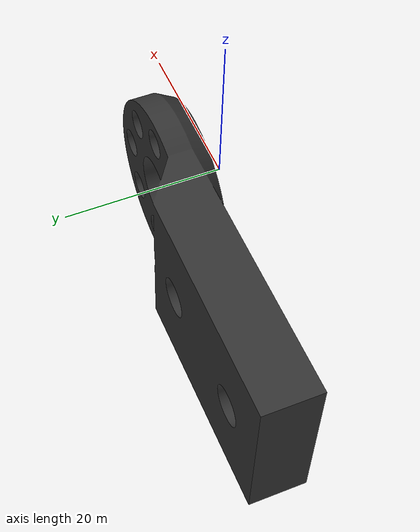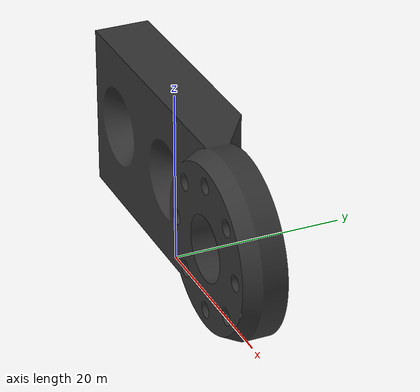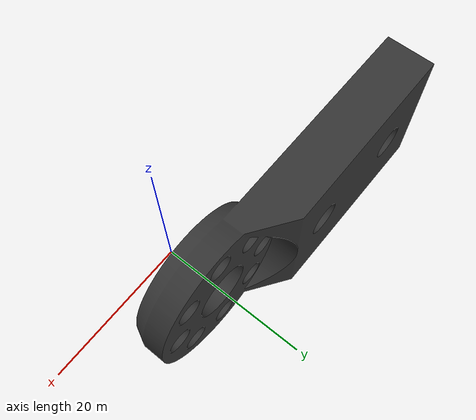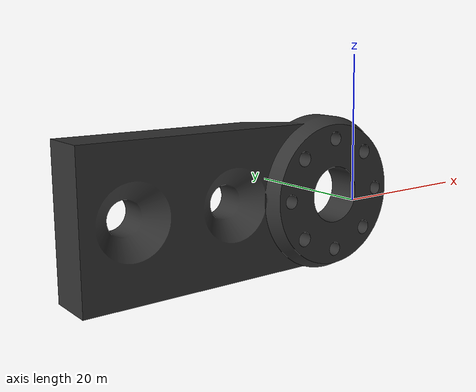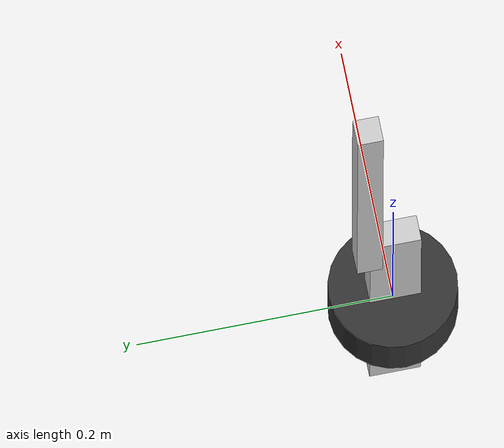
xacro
<?xml version="1.0"?>
<robot xmlns:xacro="http://ros.org/wiki/xacro" name="armbot">

  <xacro:include filename="Generic_actuator_joint.xacro"/>
  <xacro:include filename="link_2040_extrusion.xacro"/>
  <xacro:include filename="link_2020_extrusion.xacro" />

  <!-- Base Link -->
  <link name="base_link">
    <visual>
      <origin xyz="0 0 0" rpy="0 0 0"/>
      <geometry>
        <cylinder length="0.05" radius="0.05"/>
      </geometry>
      <material name="dark_grey">
        <color rgba="0.2 0.2 0.2 1.0"/>
      </material>
    </visual>
    <collision>
      <origin xyz="0 0 0" rpy="0 0 0"/>
      <geometry>
        <cylinder length="0.05" radius="0.05"/>
      </geometry>
    </collision>
  </link>

  <!-- Dynamixel Motor Mount (mesh)-->
    <link name="Dynamixel_Mount">
        <visual>
        <origin xyz="0 0 0" rpy="0 0 0"/>
        <geometry>
            <mesh filename="package://armbot_description/meshes/DynaMount.stl"/>
        </geometry>
        <material name="dark_grey">
            <color rgba="0.2 0.2 0.2 1.0"/>
        </material>
        </visual>
        <collision>
        <origin xyz="0 0 0" rpy="0 0 0"/>
        <geometry>
            <mesh filename="package://armbot_description/meshes/DynaMount.stl"/>
        </geometry>
        </collision>
    </link>

  <!-- Rest of the arm setup -->
  <xacro:link_2040_extrusion name="L2" length="0.3048"/>
  <xacro:link_2020_extrusion name="L1" length="0.3048"/>

  <xacro:actuator_joint name="J3" parent="base_link" child="L2" origin="0 0 0" rpy="0 0 0" axis="0 0 1"/>
  <xacro:actuator_joint name="J2" parent="L2" child="L1" origin="0 0.02 0.1" rpy="0 0 0" axis="0 1 0"/>
  <xacro:actuator_joint name="J1" parent="L1" child="Dynamixel_Mount" origin="0 -0.02 0.1" rpy="0 0 0" axis="0 1 0"/>

</robot>

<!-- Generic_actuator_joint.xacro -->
<robot xmlns:xacro="http://ros.org/wiki/xacro">
    <xacro:macro name="actuator_joint" params="name parent child origin rpy axis">
        <joint name="${name}" type="revolute">
            <origin xyz="${origin}" rpy="${rpy}"/> <!-- Set the joint frame's position and orientation -->
            <parent link="${parent}"/>
            <child link="${child}"/>
            <axis xyz="${axis}"/> <!-- Use the axis parameter here -->
            <limit lower="-3.14" upper="3.14" effort="1000" velocity="1.5"/>
        </joint>
    </xacro:macro>
</robot>

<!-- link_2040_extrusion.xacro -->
<robot xmlns:xacro="http://ros.org/wiki/xacro">
    <xacro:macro name="link_2040_extrusion" params="name length">
        <link name="${name}">
            <visual>
                <geometry>
                    <box size="0.02 0.04 ${length}"/>
                </geometry>
                <material name="aluminum">
                    <color rgba="0.8 0.8 0.8 1.0"/>
                </material>
            </visual>
            <collision>
                <geometry>
                    <box size="0.02 0.04 ${length}"/>
                </geometry>
            </collision>
            <inertial>
                <mass value="0.2"/> <!-- Approximate mass; adjust based on actual weight -->
                <inertia ixx="0.1" ixy="0" ixz="0" iyy="0.1" iyz="0" izz="0.1"/>
                <!-- Inertia tensor values should be calculated based on the actual dimensions and mass distribution -->
            </inertial>
        </link>
    </xacro:macro>
</robot>

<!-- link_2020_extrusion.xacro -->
<robot xmlns:xacro="http://ros.org/wiki/xacro">
    <xacro:macro name="link_2020_extrusion" params="name length">
        <link name="${name}">
            <visual>
                <origin rpy="0 0 0" xyz="0 0 ${length/2}"/>
                <geometry>
                    <box size="0.020 0.020 ${length}"/>
                </geometry>
                <material name="aluminum">
                    <color rgba="0.8 0.8 0.8 1.0"/>
                </material>
            </visual>
            <collision>
                <origin rpy="0 0 0" xyz="0 0 ${length/2}"/>
                <geometry>
                    <box size="0.020 0.020 ${length}"/>
                </geometry>
            </collision>
        </link>
    </xacro:macro>
</robot>
